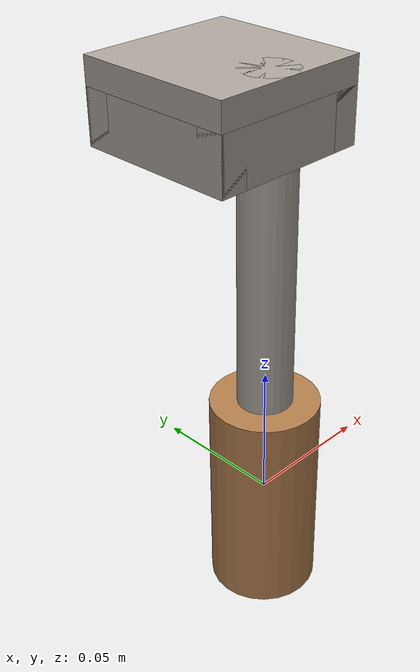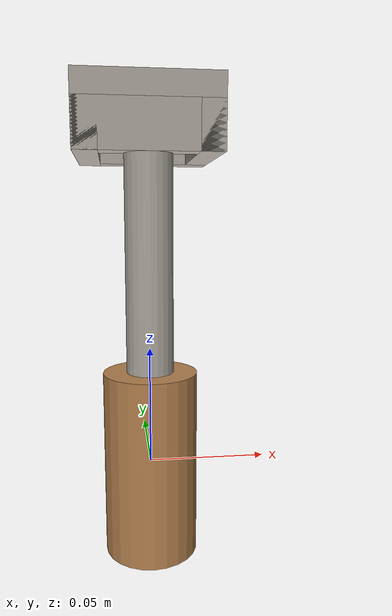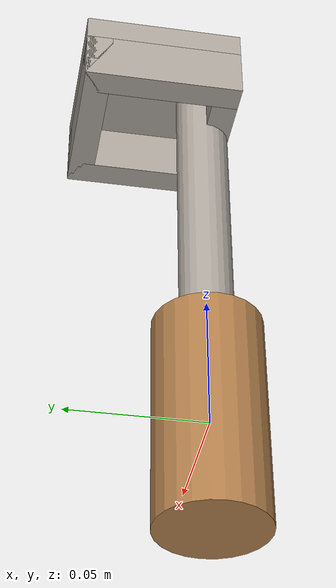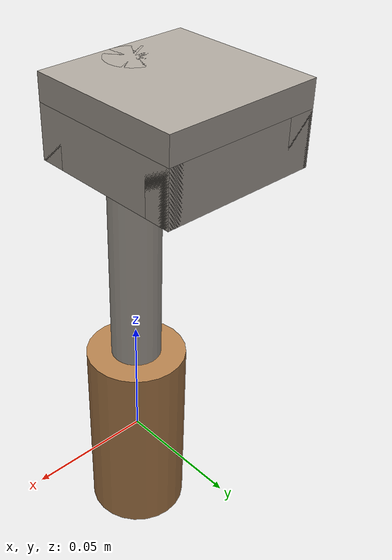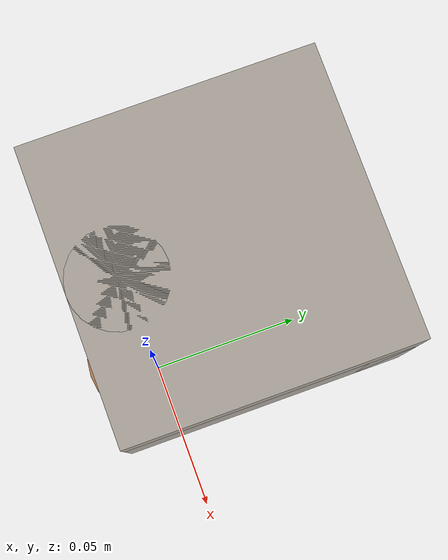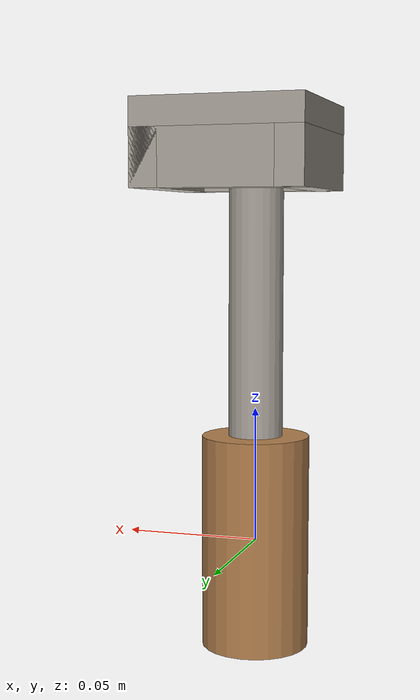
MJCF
<?xml version="1.0" encoding="utf-8"?>
<!-- from https://github.com/vikashplus/mj_envs/tree/master/mj_envs/hand_manipulation_suite/assets -->
<!-- Information about door can be found in this paper: https://arxiv.org/pdf/1709.10087.pdf -->

<mujoco model="toolbox">
  <asset>
    <texture file="../textures/light-wood.png" type="cube" name="light-wood" />
    <texture file="../textures/steel-brushed.png" type="cube" name="steel" />
    <material name="MatSteel" texture="steel" specular="1" shininess="0.3" rgba="0.9 0.9 0.9 1" />
    <material name="MatLightWood" texture="light-wood" texrepeat="3 3" specular="0.4" shininess="0.1" />
  </asset>
  <worldbody>
    <body>
      <body name="object">
        <inertial pos="0 0 0" mass="0.1" diaginertia="0.00052 0.0012 0.001"/>
        <site name="origin" pos="0 0 0" rgba="0 0 0 0" size="0.005"/>

        <geom name="handle"
          pos="0 0 0" size="0.02 0.02 0.04" type="box"
          density="1.0"
          group="0" friction="2 2 2"
          rgba="0 0 0 0"
          />
        <geom name="handle_vis"
          pos="0 0 0" size="0.02 0.04" type="cylinder"
          group="1" contype="0" conaffinity="0"
          material="MatLightWood"
          />

        <geom name="stick"
          pos="0 0 0.1" size="0.01 0.01 0.06" type="box"
          density="1.0"
          group="0" friction="2 2 2"
          rgba="0 0 0 0"
          />
        <geom name="stick_vis"
          pos="0 0 0.1" size="0.01 0.06" type="cylinder"
          group="1" contype="0" conaffinity="0"
          material="MatSteel"
          />

        <body pos="0 0.02 0.145">
          <geom name="scoop"
            pos="0 0 0" size="0.03 0.03 0.015" type="box"
            group="0" friction="2 2 2"
            rgba="0 0 0 0"
            />

          <geom name="scoop_bottom_vis"
            pos="0 0 0.01" size="0.03 0.03 0.005" type="box"
            group="1" contype="0" conaffinity="0"
            material="MatSteel"
            />

          <geom name="scoop_side1_vis"
            pos="0.025 0 -0.005" size="0.005 0.03 0.01" type="box"
            group="1" contype="0" conaffinity="0"
            material="MatSteel"
            />

          <geom name="scoop_side2_vis"
            pos="-0.025 0 -0.005" size="0.005 0.03 0.01" type="box"
            group="1" contype="0" conaffinity="0"
            material="MatSteel"
            />

          <geom name="scoop_side3_vis"
            pos="0 0.025 -0.005" size="0.03 0.005 0.01" type="box"
            group="1" contype="0" conaffinity="0"
            material="MatSteel"
            />
          <geom name="scoop_side4_vis"
            pos="0 -0.025 -0.005" size="0.03 0.005 0.01" type="box"
            group="1" contype="0" conaffinity="0"
            material="MatSteel"
            />

        </body>

      </body>
      <site name="bottom_site" pos="0 0 -0.0207" rgba="0 0 0 0" size="0.005"/>
      <site name="top_site" pos="0 0 0.007" rgba="0 0 0 0" size="0.005"/>
      <site name="horizontal_radius_site" pos="0 0 0" rgba="0 0 0 0" size="0.003"/>
    </body>

  </worldbody>
</mujoco>
